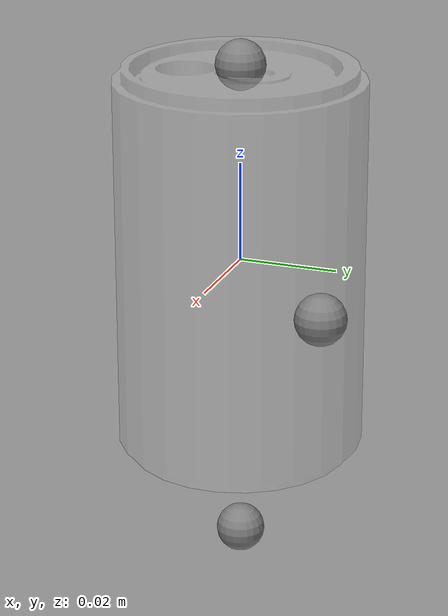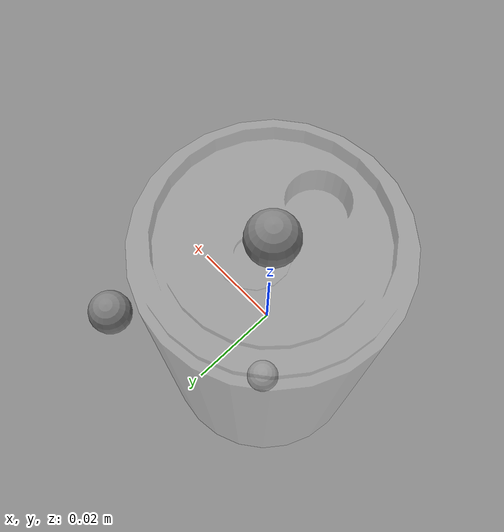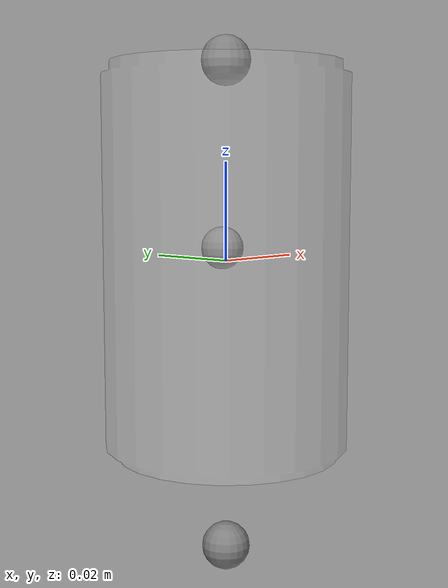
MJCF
<mujoco model="can">
  <asset>
    <mesh file="meshes/can.stl" name="can_mesh"/>
  </asset>
  <worldbody>
    <body>
      <body name="visual">
        <geom pos="0 0 0" mesh="can_mesh" type="mesh" rgba="0.8 0.8 0.8 0.3"  conaffinity="0" contype="0" group="0" mass="0.0001"/>
        <geom pos="0 0 0" mesh="can_mesh" type="mesh" rgba="0.8 0.8 0.8 0.3"  conaffinity="0" contype="0" group="1" mass="0.0001"/>
      </body>
      <site pos="0 0 -0.06" name="bottom_site"/>
      <site pos="0 0 0.04" name="top_site"/>
      <site pos="0.025 0.025 0" name="horizontal_radius_site"/>
    </body>
  </worldbody>
</mujoco>
